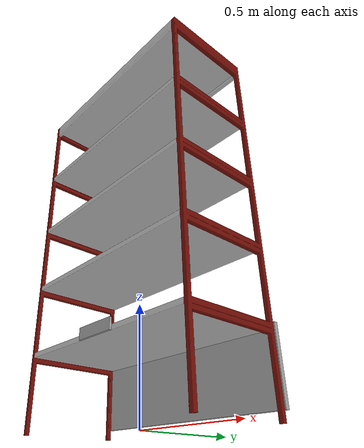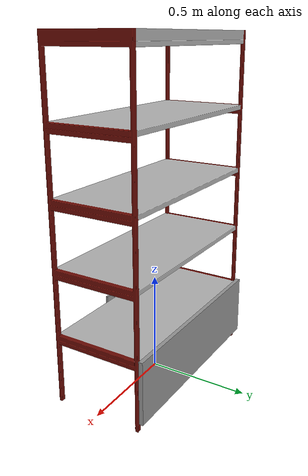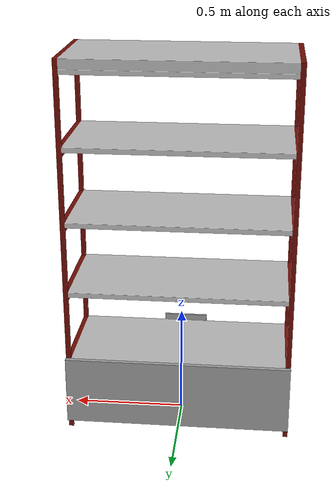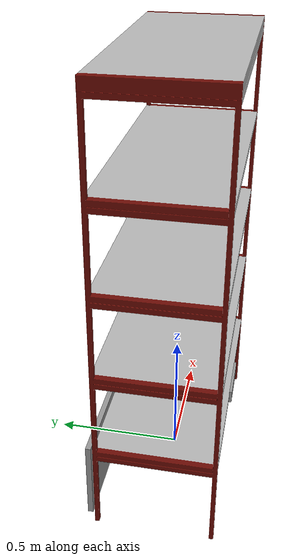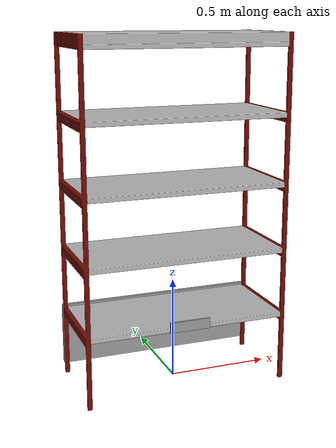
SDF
<?xml version='1.0'?>
<sdf version='1.7'>
  <model name='rack'>

    <link name='link'>
      <inertial>
        <pose>0 0 0 0 -0 0</pose>
        <mass>1.87</mass>
        <inertia>
          <ixx>0.01857</ixx>
          <ixy>0</ixy>
          <ixz>0</ixz>
          <iyy>0.015598</iyy>
          <iyz>0</iyz>
          <izz>0.00305</izz>
        </inertia>
      </inertial>
      <self_collide>0</self_collide>
      <enable_wind>0</enable_wind>
      <kinematic>0</kinematic>
      <pose>0 0 0 -0 -0 -0</pose>
      <gravity>1</gravity>
      <visual name='visual1'>
        <cast_shadows>0</cast_shadows>
        <geometry>
          <mesh>
            <uri>model://rack/meshes/rack.dae</uri>
          </mesh>
        </geometry>
        <material>
          <shader type='pixel'>
            <normal_map>__default__</normal_map>
          </shader>
          <emissive>0 0 0 1</emissive>
        </material>
        <pose>0 0 0 0 -0 0</pose>
        <transparency>0</transparency>
      </visual>
      <collision name='collision_7'>
        <laser_retro>0</laser_retro>
        <max_contacts>10</max_contacts>
        <pose>0 0 0.34 0 1.57 0</pose>
        <geometry>
          <box>
            <size>0.05 0.448682 1</size>
          </box>
        </geometry>
        <surface>
          <friction>
            <ode>
              <mu>1</mu>
              <mu2>1</mu2>
              <fdir1>0 0 0</fdir1>
              <slip1>0</slip1>
              <slip2>0</slip2>
            </ode>
            <torsional>
              <coefficient>1</coefficient>
              <patch_radius>0</patch_radius>
              <surface_radius>0</surface_radius>
              <use_patch_radius>1</use_patch_radius>
              <ode>
                <slip>0</slip>
              </ode>
            </torsional>
          </friction>
          <bounce>
            <restitution_coefficient>0</restitution_coefficient>
            <threshold>1e+06</threshold>
          </bounce>
          <contact>
            <collide_without_contact>0</collide_without_contact>
            <collide_without_contact_bitmask>1</collide_without_contact_bitmask>
            <collide_bitmask>1</collide_bitmask>
            <ode>
              <soft_cfm>0</soft_cfm>
              <soft_erp>0.2</soft_erp>
              <kp>1e+13</kp>
              <kd>1</kd>
              <max_vel>0.01</max_vel>
              <min_depth>0</min_depth>
            </ode>
            <bullet>
              <split_impulse>1</split_impulse>
              <split_impulse_penetration_threshold>-0.01</split_impulse_penetration_threshold>
              <soft_cfm>0</soft_cfm>
              <soft_erp>0.2</soft_erp>
              <kp>1e+13</kp>
              <kd>1</kd>
            </bullet>
          </contact>
        </surface>
      </collision>

      <collision name='collision_5'>
        <laser_retro>0</laser_retro>
        <max_contacts>10</max_contacts>
        <pose>0 0 0.98 0 1.57 0</pose>
        <geometry>
          <box>
            <size>0.05 0.448 1</size>
          </box>
        </geometry>
        <surface>
          <friction>
            <ode>
              <mu>1</mu>
              <mu2>1</mu2>
              <fdir1>0 0 0</fdir1>
              <slip1>0</slip1>
              <slip2>0</slip2>
            </ode>
            <torsional>
              <coefficient>1</coefficient>
              <patch_radius>0</patch_radius>
              <surface_radius>0</surface_radius>
              <use_patch_radius>1</use_patch_radius>
              <ode>
                <slip>0</slip>
              </ode>
            </torsional>
          </friction>
          <bounce>
            <restitution_coefficient>0</restitution_coefficient>
            <threshold>1e+06</threshold>
          </bounce>
          <contact>
            <collide_without_contact>0</collide_without_contact>
            <collide_without_contact_bitmask>1</collide_without_contact_bitmask>
            <collide_bitmask>1</collide_bitmask>
            <ode>
              <soft_cfm>0</soft_cfm>
              <soft_erp>0.2</soft_erp>
              <kp>1e+13</kp>
              <kd>1</kd>
              <max_vel>0.01</max_vel>
              <min_depth>0</min_depth>
            </ode>
            <bullet>
              <split_impulse>1</split_impulse>
              <split_impulse_penetration_threshold>-0.01</split_impulse_penetration_threshold>
              <soft_cfm>0</soft_cfm>
              <soft_erp>0.2</soft_erp>
              <kp>1e+13</kp>
              <kd>1</kd>
            </bullet>
          </contact>
        </surface>
      </collision>
      <collision name='collision_3'>
        <laser_retro>0</laser_retro>
        <max_contacts>10</max_contacts>
        <pose>0 0 1.68 0 1.57 0</pose>
        <geometry>
          <box>
            <size>0.05 0.448682 1</size>
          </box>
        </geometry>
        <surface>
          <friction>
            <ode>
              <mu>1</mu>
              <mu2>1</mu2>
              <fdir1>0 0 0</fdir1>
              <slip1>0</slip1>
              <slip2>0</slip2>
            </ode>
            <torsional>
              <coefficient>1</coefficient>
              <patch_radius>0</patch_radius>
              <surface_radius>0</surface_radius>
              <use_patch_radius>1</use_patch_radius>
              <ode>
                <slip>0</slip>
              </ode>
            </torsional>
          </friction>
          <bounce>
            <restitution_coefficient>0</restitution_coefficient>
            <threshold>1e+06</threshold>
          </bounce>
          <contact>
            <collide_without_contact>0</collide_without_contact>
            <collide_without_contact_bitmask>1</collide_without_contact_bitmask>
            <collide_bitmask>1</collide_bitmask>
            <ode>
              <soft_cfm>0</soft_cfm>
              <soft_erp>0.2</soft_erp>
              <kp>1e+13</kp>
              <kd>1</kd>
              <max_vel>0.01</max_vel>
              <min_depth>0</min_depth>
            </ode>
            <bullet>
              <split_impulse>1</split_impulse>
              <split_impulse_penetration_threshold>-0.01</split_impulse_penetration_threshold>
              <soft_cfm>0</soft_cfm>
              <soft_erp>0.2</soft_erp>
              <kp>1e+13</kp>
              <kd>1</kd>
            </bullet>
          </contact>
        </surface>
      </collision>
      <collision name='collision_6'>
        <laser_retro>0</laser_retro>
        <max_contacts>10</max_contacts>
        <pose>0 0 0.66 0 1.57 0</pose>
        <geometry>
          <box>
            <size>0.05 0.448682 1</size>
          </box>
        </geometry>
        <surface>
          <friction>
            <ode>
              <mu>1</mu>
              <mu2>1</mu2>
              <fdir1>0 0 0</fdir1>
              <slip1>0</slip1>
              <slip2>0</slip2>
            </ode>
            <torsional>
              <coefficient>1</coefficient>
              <patch_radius>0</patch_radius>
              <surface_radius>0</surface_radius>
              <use_patch_radius>1</use_patch_radius>
              <ode>
                <slip>0</slip>
              </ode>
            </torsional>
          </friction>
          <bounce>
            <restitution_coefficient>0</restitution_coefficient>
            <threshold>1e+06</threshold>
          </bounce>
          <contact>
            <collide_without_contact>0</collide_without_contact>
            <collide_without_contact_bitmask>1</collide_without_contact_bitmask>
            <collide_bitmask>1</collide_bitmask>
            <ode>
              <soft_cfm>0</soft_cfm>
              <soft_erp>0.2</soft_erp>
              <kp>1e+13</kp>
              <kd>1</kd>
              <max_vel>0.01</max_vel>
              <min_depth>0</min_depth>
            </ode>
            <bullet>
              <split_impulse>1</split_impulse>
              <split_impulse_penetration_threshold>-0.01</split_impulse_penetration_threshold>
              <soft_cfm>0</soft_cfm>
              <soft_erp>0.2</soft_erp>
              <kp>1e+13</kp>
              <kd>1</kd>
            </bullet>
          </contact>
        </surface>
      </collision>
      <collision name='collision_4'>
        <laser_retro>0</laser_retro>
        <max_contacts>10</max_contacts>
        <pose>0 0 1.315 0 1.57 0</pose>
        <geometry>
          <box>
            <size>0.05 0.44 1</size>
          </box>
        </geometry>
        <surface>
          <friction>
            <ode>
              <mu>1</mu>
              <mu2>1</mu2>
              <fdir1>0 0 0</fdir1>
              <slip1>0</slip1>
              <slip2>0</slip2>
            </ode>
            <torsional>
              <coefficient>1</coefficient>
              <patch_radius>0</patch_radius>
              <surface_radius>0</surface_radius>
              <use_patch_radius>1</use_patch_radius>
              <ode>
                <slip>0</slip>
              </ode>
            </torsional>
          </friction>
          <bounce>
            <restitution_coefficient>0</restitution_coefficient>
            <threshold>1e+06</threshold>
          </bounce>
          <contact>
            <collide_without_contact>0</collide_without_contact>
            <collide_without_contact_bitmask>1</collide_without_contact_bitmask>
            <collide_bitmask>1</collide_bitmask>
            <ode>
              <soft_cfm>0</soft_cfm>
              <soft_erp>0.2</soft_erp>
              <kp>1e+13</kp>
              <kd>1</kd>
              <max_vel>0.01</max_vel>
              <min_depth>0</min_depth>
            </ode>
            <bullet>
              <split_impulse>1</split_impulse>
              <split_impulse_penetration_threshold>-0.01</split_impulse_penetration_threshold>
              <soft_cfm>0</soft_cfm>
              <soft_erp>0.2</soft_erp>
              <kp>1e+13</kp>
              <kd>1</kd>
            </bullet>
          </contact>
        </surface>
      </collision>

      <collision name='collision_1'>
        <laser_retro>0</laser_retro>
        <max_contacts>10</max_contacts>
        <pose>0.5 0 0.84 0 -0 0</pose>
        <geometry>
          <box>
            <size>0.05 0.448682 1.68801</size>
          </box>
        </geometry>
        <surface>
          <friction>
            <ode>
              <mu>1</mu>
              <mu2>1</mu2>
              <fdir1>0 0 0</fdir1>
              <slip1>0</slip1>
              <slip2>0</slip2>
            </ode>
            <torsional>
              <coefficient>1</coefficient>
              <patch_radius>0</patch_radius>
              <surface_radius>0</surface_radius>
              <use_patch_radius>1</use_patch_radius>
              <ode>
                <slip>0</slip>
              </ode>
            </torsional>
          </friction>
          <bounce>
            <restitution_coefficient>0</restitution_coefficient>
            <threshold>1e+06</threshold>
          </bounce>
          <contact>
            <collide_without_contact>0</collide_without_contact>
            <collide_without_contact_bitmask>1</collide_without_contact_bitmask>
            <collide_bitmask>1</collide_bitmask>
            <ode>
              <soft_cfm>0</soft_cfm>
              <soft_erp>0.2</soft_erp>
              <kp>1e+13</kp>
              <kd>1</kd>
              <max_vel>0.01</max_vel>
              <min_depth>0</min_depth>
            </ode>
            <bullet>
              <split_impulse>1</split_impulse>
              <split_impulse_penetration_threshold>-0.01</split_impulse_penetration_threshold>
              <soft_cfm>0</soft_cfm>
              <soft_erp>0.2</soft_erp>
              <kp>1e+13</kp>
              <kd>1</kd>
            </bullet>
          </contact>
        </surface>
      </collision>
      <collision name='collision_2'>
        <laser_retro>0</laser_retro>
        <max_contacts>10</max_contacts>
        <pose>-0.5 0 0.84 0 -0 0</pose>
        <geometry>
          <box>
            <size>0.05 0.44 1.688</size>
          </box>
        </geometry>
        <surface>
          <friction>
            <ode>
              <mu>1</mu>
              <mu2>1</mu2>
              <fdir1>0 0 0</fdir1>
              <slip1>0</slip1>
              <slip2>0</slip2>
            </ode>
            <torsional>
              <coefficient>1</coefficient>
              <patch_radius>0</patch_radius>
              <surface_radius>0</surface_radius>
              <use_patch_radius>1</use_patch_radius>
              <ode>
                <slip>0</slip>
              </ode>
            </torsional>
          </friction>
          <bounce>
            <restitution_coefficient>0</restitution_coefficient>
            <threshold>1e+06</threshold>
          </bounce>
          <contact>
            <collide_without_contact>0</collide_without_contact>
            <collide_without_contact_bitmask>1</collide_without_contact_bitmask>
            <collide_bitmask>1</collide_bitmask>
            <ode>
              <soft_cfm>0</soft_cfm>
              <soft_erp>0.2</soft_erp>
              <kp>1e+13</kp>
              <kd>1</kd>
              <max_vel>0.01</max_vel>
              <min_depth>0</min_depth>
            </ode>
            <bullet>
              <split_impulse>1</split_impulse>
              <split_impulse_penetration_threshold>-0.01</split_impulse_penetration_threshold>
              <soft_cfm>0</soft_cfm>
              <soft_erp>0.2</soft_erp>
              <kp>1e+13</kp>
              <kd>1</kd>
            </bullet>
          </contact>
        </surface>
      </collision>

    </link>

    <link name='link_0'>
      <inertial>
        <mass>0.01</mass>
        <inertia>
          <ixx>4.167e-05</ixx>
          <ixy>0</ixy>
          <ixz>0</ixz>
          <iyy>8.67e-06</iyy>
          <iyz>0</iyz>
          <izz>3.367e-05</izz>
        </inertia>
        <pose>0 0 0 0 -0 0</pose>
      </inertial>
      <pose>0 -0.23 0.35 -1.3e-05 -1.2e-05 -1.56903</pose>
      <gravity>1</gravity>
      <self_collide>0</self_collide>
      <kinematic>0</kinematic>
      <enable_wind>0</enable_wind>
      <visual name='visual'>
        <pose>0 0 0 0 -0 0</pose>
        <geometry>
          <box>
            <size>0.01 0.2 0.05</size>
          </box>
        </geometry>
        <material>
          <lighting>1</lighting>
          <script>
            <uri>file://media/materials/scripts/gazebo.material</uri>
            <name>Gazebo/Grey</name>
          </script>
          <shader type='pixel'>
            <normal_map>__default__</normal_map>
          </shader>
          <ambient>0.3 0.3 0.3 1</ambient>
          <diffuse>0.7 0.7 0.7 1</diffuse>
          <specular>0.01 0.01 0.01 1</specular>
          <emissive>0 0 0 1</emissive>
        </material>
        <transparency>0</transparency>
        <cast_shadows>1</cast_shadows>
      </visual>
      <collision name='collision'>
        <laser_retro>0</laser_retro>
        <max_contacts>10</max_contacts>
        <pose>0 0 0 0 -0 0</pose>
        <geometry>
          <box>
            <size>0.01 0.2 0.05</size>
          </box>
        </geometry>
        <surface>
          <friction>
            <ode>
              <mu>1</mu>
              <mu2>1</mu2>
              <fdir1>0 0 0</fdir1>
              <slip1>0</slip1>
              <slip2>0</slip2>
            </ode>
            <torsional>
              <coefficient>1</coefficient>
              <patch_radius>0</patch_radius>
              <surface_radius>0</surface_radius>
              <use_patch_radius>1</use_patch_radius>
              <ode>
                <slip>0</slip>
              </ode>
            </torsional>
          </friction>
          <bounce>
            <restitution_coefficient>0</restitution_coefficient>
            <threshold>1e+06</threshold>
          </bounce>
          <contact>
            <collide_without_contact>0</collide_without_contact>
            <collide_without_contact_bitmask>1</collide_without_contact_bitmask>
            <collide_bitmask>1</collide_bitmask>
            <ode>
              <soft_cfm>0</soft_cfm>
              <soft_erp>0.2</soft_erp>
              <kp>1e+13</kp>
              <kd>1</kd>
              <max_vel>0.01</max_vel>
              <min_depth>0</min_depth>
            </ode>
            <bullet>
              <split_impulse>1</split_impulse>
              <split_impulse_penetration_threshold>-0.01</split_impulse_penetration_threshold>
              <soft_cfm>0</soft_cfm>
              <soft_erp>0.2</soft_erp>
              <kp>1e+13</kp>
              <kd>1</kd>
            </bullet>
          </contact>
        </surface>
      </collision>
    </link>

    <link name='link_0_clone'>
      <inertial>
        <mass>0.01</mass>
        <inertia>
          <ixx>4.167e-05</ixx>
          <ixy>0</ixy>
          <ixz>0</ixz>
          <iyy>8.67e-06</iyy>
          <iyz>0</iyz>
          <izz>3.367e-05</izz>
        </inertia>
        <pose>0 0 0 0 -0 0</pose>
      </inertial>
      <pose>-0 0.24 0.2 -1.7e-05 1.2e-05 -1.571</pose>
      <gravity>1</gravity>
      <self_collide>0</self_collide>
      <kinematic>0</kinematic>
      <enable_wind>0</enable_wind>
      <visual name='visual'>
        <pose>0 0 0 0 -0 0</pose>
        <geometry>
          <box>
            <size>0.02 1 0.31</size>
          </box>
        </geometry>
        <material>
          <lighting>1</lighting>
          <script>
            <uri>file://media/materials/scripts/gazebo.material</uri>
            <name>Gazebo/Grey</name>
          </script>
          <shader type='pixel'>
            <normal_map>__default__</normal_map>
          </shader>
          <ambient>0.3 0.3 0.3 1</ambient>
          <diffuse>0.7 0.7 0.7 1</diffuse>
          <specular>0.01 0.01 0.01 1</specular>
          <emissive>0 0 0 1</emissive>
        </material>
        <transparency>0</transparency>
        <cast_shadows>1</cast_shadows>
      </visual>
      <collision name='collision'>
        <laser_retro>0</laser_retro>
        <max_contacts>10</max_contacts>
        <pose>0 0 0 0 -0 0</pose>
        <geometry>
          <box>
            <size>0.02 1 0.31</size>
          </box>
        </geometry>
        <surface>
          <friction>
            <ode>
              <mu>1</mu>
              <mu2>1</mu2>
              <fdir1>0 0 0</fdir1>
              <slip1>0</slip1>
              <slip2>0</slip2>
            </ode>
            <torsional>
              <coefficient>1</coefficient>
              <patch_radius>0</patch_radius>
              <surface_radius>0</surface_radius>
              <use_patch_radius>1</use_patch_radius>
              <ode>
                <slip>0</slip>
              </ode>
            </torsional>
          </friction>
          <bounce>
            <restitution_coefficient>0</restitution_coefficient>
            <threshold>1e+06</threshold>
          </bounce>
          <contact>
            <collide_without_contact>0</collide_without_contact>
            <collide_without_contact_bitmask>1</collide_without_contact_bitmask>
            <collide_bitmask>1</collide_bitmask>
            <ode>
              <soft_cfm>0</soft_cfm>
              <soft_erp>0.2</soft_erp>
              <kp>1e+13</kp>
              <kd>1</kd>
              <max_vel>0.01</max_vel>
              <min_depth>0</min_depth>
            </ode>
            <bullet>
              <split_impulse>1</split_impulse>
              <split_impulse_penetration_threshold>-0.01</split_impulse_penetration_threshold>
              <soft_cfm>0</soft_cfm>
              <soft_erp>0.2</soft_erp>
              <kp>1e+13</kp>
              <kd>1</kd>
            </bullet>
          </contact>
        </surface>
      </collision>
    </link>
    <joint name='link_JOINT_0_0' type='fixed'>
      <parent>link</parent>
      <child>link_0_clone</child>
      <pose>0 0 0 0 -0 0</pose>
      <physics>
        <ode>
          <limit>
            <cfm>0</cfm>
            <erp>0.2</erp>
          </limit>
          <suspension>
            <cfm>0</cfm>
            <erp>0.2</erp>
          </suspension>
        </ode>
      </physics>
    </joint>
    <joint name='link_JOINT_0' type='fixed'>
      <parent>link</parent>
      <child>link_0</child>
      <pose>0 0 0 0 -0 0</pose>
      <physics>
        <ode>
          <limit>
            <cfm>0</cfm>
            <erp>0.2</erp>
          </limit>
          <suspension>
            <cfm>0</cfm>
            <erp>0.2</erp>
          </suspension>
        </ode>
      </physics>
    </joint>
    <static>0</static>
    <allow_auto_disable>1</allow_auto_disable>
  </model>
</sdf>
